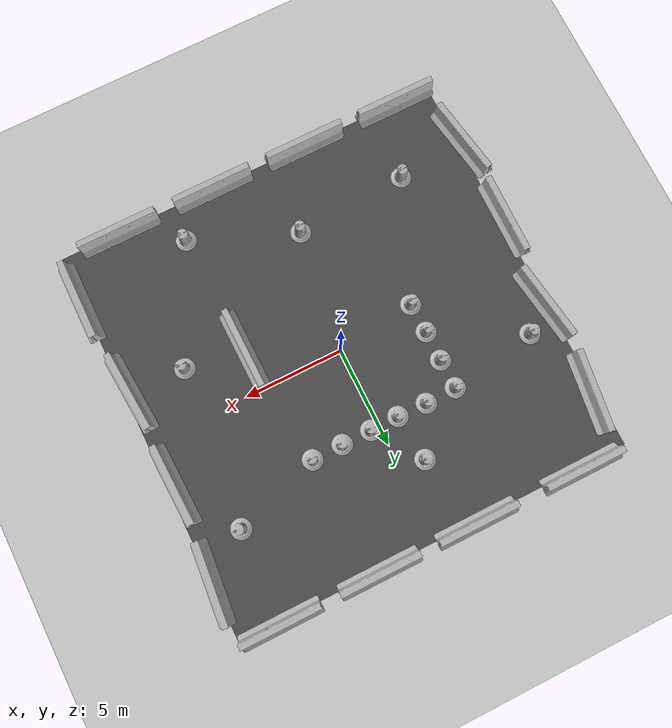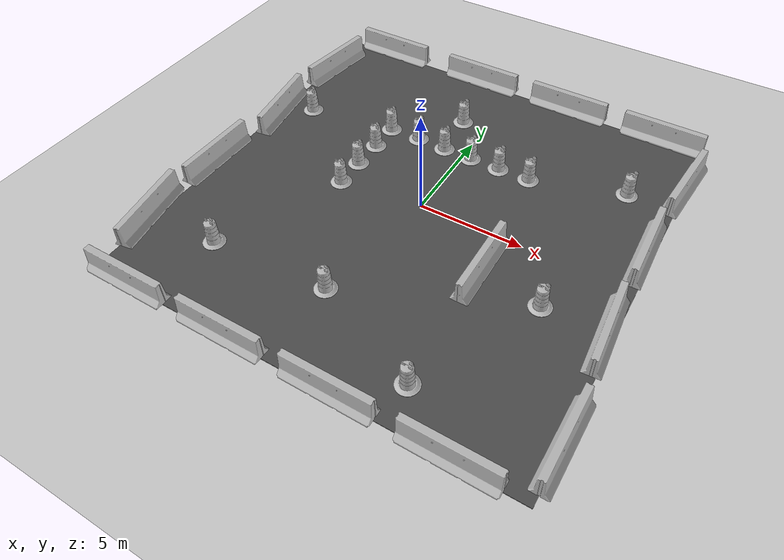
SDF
<sdf version="1.6">
 <world name="default">
  <light name="sun" type="directional">
   <pose>0 0 10 0 -0 0</pose>
   <diffuse>0.8 0.8 0.8 1</diffuse>
   <specular>0.2 0.2 0.2 1</specular>
   <attenuation>
    <range>1000</range>
    <constant>0.9</constant>
    <linear>0.01</linear>
    <quadratic>0.001</quadratic>
   </attenuation>
   <direction>-0.5 0.1 -0.9</direction>
  </light>
  <model name="ground_plane">
   <static>1</static>
   <link name="link">
    <collision name="collision">
     <geometry><plane><normal>0 0 1</normal><size>100 100</size></plane></geometry>
     <surface><friction><ode><mu>100</mu><mu2>50</mu2></ode></friction></surface>
    </collision>
    <visual name="visual">
     <cast_shadows>0</cast_shadows>
     <geometry><plane><normal>0 0 1</normal><size>100 100</size></plane></geometry>
     <material>
      <script><uri>file://media/materials/scripts/gazebo.material</uri><name>Gazebo/Grey</name></script>
     </material>
    </visual>
    <velocity_decay><linear>0</linear><angular>0</angular></velocity_decay>
   </link>
  </model>
  <physics name="default_physics" default="0" type="ode">
   <max_step_size>0.01</max_step_size>
   <real_time_factor>1</real_time_factor>
   <real_time_update_rate>100</real_time_update_rate>
  </physics>
  <scene><ambient>0.4 0.4 0.4 1</ambient><background>0.7 0.7 0.7 1</background><shadows>1</shadows></scene>
  <model name="jersey_barrier">
   <static>1</static>
   <link name="link">
    <visual name="visual">
     <geometry><mesh><uri>model://jersey_barrier/meshes/jersey_barrier.dae</uri></mesh></geometry>
    </visual>
    <collision name="upright">
     <pose>0 0 0.5715 0 -0 0</pose>
     <geometry><box><size>4.06542 0.3063 1.143</size></box></geometry>
    </collision>
    <collision name="base">
     <pose>0 0 0.032258 0 -0 0</pose>
     <geometry><box><size>4.06542 0.8107 0.064516</size></box></geometry>
    </collision>
    <collision name="base2">
     <pose>0 0 0.1 0 -0 0</pose>
     <geometry><box><size>4.06542 0.65 0.1</size></box></geometry>
    </collision>
    <collision name="base3">
     <pose>0 0 0.2 0 -0 0</pose>
     <geometry><box><size>4.06542 0.5 0.1</size></box></geometry>
    </collision>
    <collision name="left-angle">
     <pose>0 -0.224 0.2401 0.9 -0 0</pose>
     <geometry><box><size>4.06542 0.5 0.064516</size></box></geometry>
    </collision>
    <collision name="right-angle">
     <pose>0 0.224 0.2401 -0.9 0 0</pose>
     <geometry><box><size>4.06542 0.5 0.064516</size></box></geometry>
    </collision>
    <velocity_decay><linear>0</linear><angular>0</angular></velocity_decay>
   </link>
   <pose>-8 -10 0 0 -0 0</pose>
  </model>
  <model name="jersey_barrier_0">
   <static>1</static>
   <link name="link">
    <visual name="visual">
     <geometry><mesh><uri>model://jersey_barrier/meshes/jersey_barrier.dae</uri></mesh></geometry>
    </visual>
    <collision name="upright">
     <pose>0 0 0.5715 0 -0 0</pose>
     <geometry><box><size>4.06542 0.3063 1.143</size></box></geometry>
    </collision>
    <collision name="base">
     <pose>0 0 0.032258 0 -0 0</pose>
     <geometry><box><size>4.06542 0.8107 0.064516</size></box></geometry>
    </collision>
    <collision name="base2">
     <pose>0 0 0.1 0 -0 0</pose>
     <geometry><box><size>4.06542 0.65 0.1</size></box></geometry>
    </collision>
    <collision name="base3">
     <pose>0 0 0.2 0 -0 0</pose>
     <geometry><box><size>4.06542 0.5 0.1</size></box></geometry>
    </collision>
    <collision name="left-angle">
     <pose>0 -0.224 0.2401 0.9 -0 0</pose>
     <geometry><box><size>4.06542 0.5 0.064516</size></box></geometry>
    </collision>
    <collision name="right-angle">
     <pose>0 0.224 0.2401 -0.9 0 0</pose>
     <geometry><box><size>4.06542 0.5 0.064516</size></box></geometry>
    </collision>
    <velocity_decay><linear>0</linear><angular>0</angular></velocity_decay>
   </link>
   <pose>-3 -10 0 0 -0 0</pose>
  </model>
  <model name="jersey_barrier_1">
   <static>1</static>
   <link name="link">
    <visual name="visual">
     <geometry><mesh><uri>model://jersey_barrier/meshes/jersey_barrier.dae</uri></mesh></geometry>
    </visual>
    <collision name="upright">
     <pose>0 0 0.5715 0 -0 0</pose>
     <geometry><box><size>4.06542 0.3063 1.143</size></box></geometry>
    </collision>
    <collision name="base">
     <pose>0 0 0.032258 0 -0 0</pose>
     <geometry><box><size>4.06542 0.8107 0.064516</size></box></geometry>
    </collision>
    <collision name="base2">
     <pose>0 0 0.1 0 -0 0</pose>
     <geometry><box><size>4.06542 0.65 0.1</size></box></geometry>
    </collision>
    <collision name="base3">
     <pose>0 0 0.2 0 -0 0</pose>
     <geometry><box><size>4.06542 0.5 0.1</size></box></geometry>
    </collision>
    <collision name="left-angle">
     <pose>0 -0.224 0.2401 0.9 -0 0</pose>
     <geometry><box><size>4.06542 0.5 0.064516</size></box></geometry>
    </collision>
    <collision name="right-angle">
     <pose>0 0.224 0.2401 -0.9 0 0</pose>
     <geometry><box><size>4.06542 0.5 0.064516</size></box></geometry>
    </collision>
    <velocity_decay><linear>0</linear><angular>0</angular></velocity_decay>
   </link>
   <pose>2 -10 0 0 -0 0</pose>
  </model>
  <model name="jersey_barrier_2">
   <static>1</static>
   <link name="link">
    <visual name="visual">
     <geometry><mesh><uri>model://jersey_barrier/meshes/jersey_barrier.dae</uri></mesh></geometry>
    </visual>
    <collision name="upright">
     <pose>0 0 0.5715 0 -0 0</pose>
     <geometry><box><size>4.06542 0.3063 1.143</size></box></geometry>
    </collision>
    <collision name="base">
     <pose>0 0 0.032258 0 -0 0</pose>
     <geometry><box><size>4.06542 0.8107 0.064516</size></box></geometry>
    </collision>
    <collision name="base2">
     <pose>0 0 0.1 0 -0 0</pose>
     <geometry><box><size>4.06542 0.65 0.1</size></box></geometry>
    </collision>
    <collision name="base3">
     <pose>0 0 0.2 0 -0 0</pose>
     <geometry><box><size>4.06542 0.5 0.1</size></box></geometry>
    </collision>
    <collision name="left-angle">
     <pose>0 -0.224 0.2401 0.9 -0 0</pose>
     <geometry><box><size>4.06542 0.5 0.064516</size></box></geometry>
    </collision>
    <collision name="right-angle">
     <pose>0 0.224 0.2401 -0.9 0 0</pose>
     <geometry><box><size>4.06542 0.5 0.064516</size></box></geometry>
    </collision>
    <velocity_decay><linear>0</linear><angular>0</angular></velocity_decay>
   </link>
   <pose>7 -10 0 0 -0 0</pose>
  </model>
  <model name="jersey_barrier_3">
   <static>1</static>
   <link name="link">
    <visual name="visual">
     <geometry><mesh><uri>model://jersey_barrier/meshes/jersey_barrier.dae</uri></mesh></geometry>
    </visual>
    <collision name="upright">
     <pose>0 0 0.5715 0 -0 0</pose>
     <geometry><box><size>4.06542 0.3063 1.143</size></box></geometry>
    </collision>
    <collision name="base">
     <pose>0 0 0.032258 0 -0 0</pose>
     <geometry><box><size>4.06542 0.8107 0.064516</size></box></geometry>
    </collision>
    <collision name="base2">
     <pose>0 0 0.1 0 -0 0</pose>
     <geometry><box><size>4.06542 0.65 0.1</size></box></geometry>
    </collision>
    <collision name="base3">
     <pose>0 0 0.2 0 -0 0</pose>
     <geometry><box><size>4.06542 0.5 0.1</size></box></geometry>
    </collision>
    <collision name="left-angle">
     <pose>0 -0.224 0.2401 0.9 -0 0</pose>
     <geometry><box><size>4.06542 0.5 0.064516</size></box></geometry>
    </collision>
    <collision name="right-angle">
     <pose>0 0.224 0.2401 -0.9 0 0</pose>
     <geometry><box><size>4.06542 0.5 0.064516</size></box></geometry>
    </collision>
    <velocity_decay><linear>0</linear><angular>0</angular></velocity_decay>
   </link>
   <pose>-7.50675 10 0 0 -0 0</pose>
  </model>
  <model name="jersey_barrier_4">
   <static>1</static>
   <link name="link">
    <visual name="visual">
     <geometry><mesh><uri>model://jersey_barrier/meshes/jersey_barrier.dae</uri></mesh></geometry>
    </visual>
    <collision name="upright">
     <pose>0 0 0.5715 0 -0 0</pose>
     <geometry><box><size>4.06542 0.3063 1.143</size></box></geometry>
    </collision>
    <collision name="base">
     <pose>0 0 0.032258 0 -0 0</pose>
     <geometry><box><size>4.06542 0.8107 0.064516</size></box></geometry>
    </collision>
    <collision name="base2">
     <pose>0 0 0.1 0 -0 0</pose>
     <geometry><box><size>4.06542 0.65 0.1</size></box></geometry>
    </collision>
    <collision name="base3">
     <pose>0 0 0.2 0 -0 0</pose>
     <geometry><box><size>4.06542 0.5 0.1</size></box></geometry>
    </collision>
    <collision name="left-angle">
     <pose>0 -0.224 0.2401 0.9 -0 0</pose>
     <geometry><box><size>4.06542 0.5 0.064516</size></box></geometry>
    </collision>
    <collision name="right-angle">
     <pose>0 0.224 0.2401 -0.9 0 0</pose>
     <geometry><box><size>4.06542 0.5 0.064516</size></box></geometry>
    </collision>
    <velocity_decay><linear>0</linear><angular>0</angular></velocity_decay>
   </link>
   <pose>-2 10 0 0 -0 0</pose>
  </model>
  <model name="jersey_barrier_5">
   <static>1</static>
   <link name="link">
    <visual name="visual">
     <geometry><mesh><uri>model://jersey_barrier/meshes/jersey_barrier.dae</uri></mesh></geometry>
    </visual>
    <collision name="upright">
     <pose>0 0 0.5715 0 -0 0</pose>
     <geometry><box><size>4.06542 0.3063 1.143</size></box></geometry>
    </collision>
    <collision name="base">
     <pose>0 0 0.032258 0 -0 0</pose>
     <geometry><box><size>4.06542 0.8107 0.064516</size></box></geometry>
    </collision>
    <collision name="base2">
     <pose>0 0 0.1 0 -0 0</pose>
     <geometry><box><size>4.06542 0.65 0.1</size></box></geometry>
    </collision>
    <collision name="base3">
     <pose>0 0 0.2 0 -0 0</pose>
     <geometry><box><size>4.06542 0.5 0.1</size></box></geometry>
    </collision>
    <collision name="left-angle">
     <pose>0 -0.224 0.2401 0.9 -0 0</pose>
     <geometry><box><size>4.06542 0.5 0.064516</size></box></geometry>
    </collision>
    <collision name="right-angle">
     <pose>0 0.224 0.2401 -0.9 0 0</pose>
     <geometry><box><size>4.06542 0.5 0.064516</size></box></geometry>
    </collision>
    <velocity_decay><linear>0</linear><angular>0</angular></velocity_decay>
   </link>
   <pose>3 10 0 0 -0 0</pose>
  </model>
  <model name="jersey_barrier_6">
   <static>1</static>
   <link name="link">
    <visual name="visual">
     <geometry><mesh><uri>model://jersey_barrier/meshes/jersey_barrier.dae</uri></mesh></geometry>
    </visual>
    <collision name="upright">
     <pose>0 0 0.5715 0 -0 0</pose>
     <geometry><box><size>4.06542 0.3063 1.143</size></box></geometry>
    </collision>
    <collision name="base">
     <pose>0 0 0.032258 0 -0 0</pose>
     <geometry><box><size>4.06542 0.8107 0.064516</size></box></geometry>
    </collision>
    <collision name="base2">
     <pose>0 0 0.1 0 -0 0</pose>
     <geometry><box><size>4.06542 0.65 0.1</size></box></geometry>
    </collision>
    <collision name="base3">
     <pose>0 0 0.2 0 -0 0</pose>
     <geometry><box><size>4.06542 0.5 0.1</size></box></geometry>
    </collision>
    <collision name="left-angle">
     <pose>0 -0.224 0.2401 0.9 -0 0</pose>
     <geometry><box><size>4.06542 0.5 0.064516</size></box></geometry>
    </collision>
    <collision name="right-angle">
     <pose>0 0.224 0.2401 -0.9 0 0</pose>
     <geometry><box><size>4.06542 0.5 0.064516</size></box></geometry>
    </collision>
    <velocity_decay><linear>0</linear><angular>0</angular></velocity_decay>
   </link>
   <pose>8 10 0 0 -0 0</pose>
  </model>
  <model name="jersey_barrier_7">
   <static>1</static>
   <link name="link">
    <visual name="visual">
     <geometry><mesh><uri>model://jersey_barrier/meshes/jersey_barrier.dae</uri></mesh></geometry>
    </visual>
    <collision name="upright">
     <pose>0 0 0.5715 0 -0 0</pose>
     <geometry><box><size>4.06542 0.3063 1.143</size></box></geometry>
    </collision>
    <collision name="base">
     <pose>0 0 0.032258 0 -0 0</pose>
     <geometry><box><size>4.06542 0.8107 0.064516</size></box></geometry>
    </collision>
    <collision name="base2">
     <pose>0 0 0.1 0 -0 0</pose>
     <geometry><box><size>4.06542 0.65 0.1</size></box></geometry>
    </collision>
    <collision name="base3">
     <pose>0 0 0.2 0 -0 0</pose>
     <geometry><box><size>4.06542 0.5 0.1</size></box></geometry>
    </collision>
    <collision name="left-angle">
     <pose>0 -0.224 0.2401 0.9 -0 0</pose>
     <geometry><box><size>4.06542 0.5 0.064516</size></box></geometry>
    </collision>
    <collision name="right-angle">
     <pose>0 0.224 0.2401 -0.9 0 0</pose>
     <geometry><box><size>4.06542 0.5 0.064516</size></box></geometry>
    </collision>
    <velocity_decay><linear>0</linear><angular>0</angular></velocity_decay>
   </link>
   <pose>9.74902 -2.57759 0 0 -0 1.64</pose>
  </model>
  <model name="jersey_barrier_8">
   <static>1</static>
   <link name="link">
    <visual name="visual">
     <geometry><mesh><uri>model://jersey_barrier/meshes/jersey_barrier.dae</uri></mesh></geometry>
    </visual>
    <collision name="upright">
     <pose>0 0 0.5715 0 -0 0</pose>
     <geometry><box><size>4.06542 0.3063 1.143</size></box></geometry>
    </collision>
    <collision name="base">
     <pose>0 0 0.032258 0 -0 0</pose>
     <geometry><box><size>4.06542 0.8107 0.064516</size></box></geometry>
    </collision>
    <collision name="base2">
     <pose>0 0 0.1 0 -0 0</pose>
     <geometry><box><size>4.06542 0.65 0.1</size></box></geometry>
    </collision>
    <collision name="base3">
     <pose>0 0 0.2 0 -0 0</pose>
     <geometry><box><size>4.06542 0.5 0.1</size></box></geometry>
    </collision>
    <collision name="left-angle">
     <pose>0 -0.224 0.2401 0.9 -0 0</pose>
     <geometry><box><size>4.06542 0.5 0.064516</size></box></geometry>
    </collision>
    <collision name="right-angle">
     <pose>0 0.224 0.2401 -0.9 0 0</pose>
     <geometry><box><size>4.06542 0.5 0.064516</size></box></geometry>
    </collision>
    <velocity_decay><linear>0</linear><angular>0</angular></velocity_decay>
   </link>
   <pose>9.70141 2.24369 0 0 -0 1.6</pose>
  </model>
  <model name="jersey_barrier_9">
   <static>1</static>
   <link name="link">
    <visual name="visual">
     <geometry><mesh><uri>model://jersey_barrier/meshes/jersey_barrier.dae</uri></mesh></geometry>
    </visual>
    <collision name="upright">
     <pose>0 0 0.5715 0 -0 0</pose>
     <geometry><box><size>4.06542 0.3063 1.143</size></box></geometry>
    </collision>
    <collision name="base">
     <pose>0 0 0.032258 0 -0 0</pose>
     <geometry><box><size>4.06542 0.8107 0.064516</size></box></geometry>
    </collision>
    <collision name="base2">
     <pose>0 0 0.1 0 -0 0</pose>
     <geometry><box><size>4.06542 0.65 0.1</size></box></geometry>
    </collision>
    <collision name="base3">
     <pose>0 0 0.2 0 -0 0</pose>
     <geometry><box><size>4.06542 0.5 0.1</size></box></geometry>
    </collision>
    <collision name="left-angle">
     <pose>0 -0.224 0.2401 0.9 -0 0</pose>
     <geometry><box><size>4.06542 0.5 0.064516</size></box></geometry>
    </collision>
    <collision name="right-angle">
     <pose>0 0.224 0.2401 -0.9 0 0</pose>
     <geometry><box><size>4.06542 0.5 0.064516</size></box></geometry>
    </collision>
    <velocity_decay><linear>0</linear><angular>0</angular></velocity_decay>
   </link>
   <pose>-10.0607 -6.69856 0 0 0 -1.4</pose>
  </model>
  <model name="jersey_barrier_10">
   <static>1</static>
   <link name="link">
    <visual name="visual">
     <geometry><mesh><uri>model://jersey_barrier/meshes/jersey_barrier.dae</uri></mesh></geometry>
    </visual>
    <collision name="upright">
     <pose>0 0 0.5715 0 -0 0</pose>
     <geometry><box><size>4.06542 0.3063 1.143</size></box></geometry>
    </collision>
    <collision name="base">
     <pose>0 0 0.032258 0 -0 0</pose>
     <geometry><box><size>4.06542 0.8107 0.064516</size></box></geometry>
    </collision>
    <collision name="base2">
     <pose>0 0 0.1 0 -0 0</pose>
     <geometry><box><size>4.06542 0.65 0.1</size></box></geometry>
    </collision>
    <collision name="base3">
     <pose>0 0 0.2 0 -0 0</pose>
     <geometry><box><size>4.06542 0.5 0.1</size></box></geometry>
    </collision>
    <collision name="left-angle">
     <pose>0 -0.224 0.2401 0.9 -0 0</pose>
     <geometry><box><size>4.06542 0.5 0.064516</size></box></geometry>
    </collision>
    <collision name="right-angle">
     <pose>0 0.224 0.2401 -0.9 0 0</pose>
     <geometry><box><size>4.06542 0.5 0.064516</size></box></geometry>
    </collision>
    <velocity_decay><linear>0</linear><angular>0</angular></velocity_decay>
   </link>
   <pose>-10.0774 -2.27159 0 0 -0 1.56</pose>
  </model>
  <model name="jersey_barrier_11">
   <static>1</static>
   <link name="link">
    <visual name="visual">
     <geometry><mesh><uri>model://jersey_barrier/meshes/jersey_barrier.dae</uri></mesh></geometry>
    </visual>
    <collision name="upright">
     <pose>0 0 0.5715 0 -0 0</pose>
     <geometry><box><size>4.06542 0.3063 1.143</size></box></geometry>
    </collision>
    <collision name="base">
     <pose>0 0 0.032258 0 -0 0</pose>
     <geometry><box><size>4.06542 0.8107 0.064516</size></box></geometry>
    </collision>
    <collision name="base2">
     <pose>0 0 0.1 0 -0 0</pose>
     <geometry><box><size>4.06542 0.65 0.1</size></box></geometry>
    </collision>
    <collision name="base3">
     <pose>0 0 0.2 0 -0 0</pose>
     <geometry><box><size>4.06542 0.5 0.1</size></box></geometry>
    </collision>
    <collision name="left-angle">
     <pose>0 -0.224 0.2401 0.9 -0 0</pose>
     <geometry><box><size>4.06542 0.5 0.064516</size></box></geometry>
    </collision>
    <collision name="right-angle">
     <pose>0 0.224 0.2401 -0.9 0 0</pose>
     <geometry><box><size>4.06542 0.5 0.064516</size></box></geometry>
    </collision>
    <velocity_decay><linear>0</linear><angular>0</angular></velocity_decay>
   </link>
   <pose>-9.77013 2.34791 0 0 -0 1.72</pose>
  </model>
  <model name="jersey_barrier_12">
   <static>1</static>
   <link name="link">
    <visual name="visual">
     <geometry><mesh><uri>model://jersey_barrier/meshes/jersey_barrier.dae</uri></mesh></geometry>
    </visual>
    <collision name="upright">
     <pose>0 0 0.5715 0 -0 0</pose>
     <geometry><box><size>4.06542 0.3063 1.143</size></box></geometry>
    </collision>
    <collision name="base">
     <pose>0 0 0.032258 0 -0 0</pose>
     <geometry><box><size>4.06542 0.8107 0.064516</size></box></geometry>
    </collision>
    <collision name="base2">
     <pose>0 0 0.1 0 -0 0</pose>
     <geometry><box><size>4.06542 0.65 0.1</size></box></geometry>
    </collision>
    <collision name="base3">
     <pose>0 0 0.2 0 -0 0</pose>
     <geometry><box><size>4.06542 0.5 0.1</size></box></geometry>
    </collision>
    <collision name="left-angle">
     <pose>0 -0.224 0.2401 0.9 -0 0</pose>
     <geometry><box><size>4.06542 0.5 0.064516</size></box></geometry>
    </collision>
    <collision name="right-angle">
     <pose>0 0.224 0.2401 -0.9 0 0</pose>
     <geometry><box><size>4.06542 0.5 0.064516</size></box></geometry>
    </collision>
    <velocity_decay><linear>0</linear><angular>0</angular></velocity_decay>
   </link>
   <pose>10.0879 -7.62159 0 0 -0 1.56</pose>
  </model>
  <model name="jersey_barrier_13">
   <static>1</static>
   <link name="link">
    <visual name="visual">
     <geometry><mesh><uri>model://jersey_barrier/meshes/jersey_barrier.dae</uri></mesh></geometry>
    </visual>
    <collision name="upright">
     <pose>0 0 0.5715 0 -0 0</pose>
     <geometry><box><size>4.06542 0.3063 1.143</size></box></geometry>
    </collision>
    <collision name="base">
     <pose>0 0 0.032258 0 -0 0</pose>
     <geometry><box><size>4.06542 0.8107 0.064516</size></box></geometry>
    </collision>
    <collision name="base2">
     <pose>0 0 0.1 0 -0 0</pose>
     <geometry><box><size>4.06542 0.65 0.1</size></box></geometry>
    </collision>
    <collision name="base3">
     <pose>0 0 0.2 0 -0 0</pose>
     <geometry><box><size>4.06542 0.5 0.1</size></box></geometry>
    </collision>
    <collision name="left-angle">
     <pose>0 -0.224 0.2401 0.9 -0 0</pose>
     <geometry><box><size>4.06542 0.5 0.064516</size></box></geometry>
    </collision>
    <collision name="right-angle">
     <pose>0 0.224 0.2401 -0.9 0 0</pose>
     <geometry><box><size>4.06542 0.5 0.064516</size></box></geometry>
    </collision>
    <velocity_decay><linear>0</linear><angular>0</angular></velocity_decay>
   </link>
   <pose>10 7 0 0 -0 1.48</pose>
  </model>
  <model name="jersey_barrier_14">
   <static>1</static>
   <link name="link">
    <visual name="visual">
     <geometry><mesh><uri>model://jersey_barrier/meshes/jersey_barrier.dae</uri></mesh></geometry>
    </visual>
    <collision name="upright">
     <pose>0 0 0.5715 0 -0 0</pose>
     <geometry><box><size>4.06542 0.3063 1.143</size></box></geometry>
    </collision>
    <collision name="base">
     <pose>0 0 0.032258 0 -0 0</pose>
     <geometry><box><size>4.06542 0.8107 0.064516</size></box></geometry>
    </collision>
    <collision name="base2">
     <pose>0 0 0.1 0 -0 0</pose>
     <geometry><box><size>4.06542 0.65 0.1</size></box></geometry>
    </collision>
    <collision name="base3">
     <pose>0 0 0.2 0 -0 0</pose>
     <geometry><box><size>4.06542 0.5 0.1</size></box></geometry>
    </collision>
    <collision name="left-angle">
     <pose>0 -0.224 0.2401 0.9 -0 0</pose>
     <geometry><box><size>4.06542 0.5 0.064516</size></box></geometry>
    </collision>
    <collision name="right-angle">
     <pose>0 0.224 0.2401 -0.9 0 0</pose>
     <geometry><box><size>4.06542 0.5 0.064516</size></box></geometry>
    </collision>
    <velocity_decay><linear>0</linear><angular>0</angular></velocity_decay>
   </link>
   <pose>-9.64482 7.05946 0 0 -0 1.44</pose>
  </model>
  <model name="jersey_barrier_15">
   <static>1</static>
   <link name="link">
    <visual name="visual">
     <geometry><mesh><uri>model://jersey_barrier/meshes/jersey_barrier.dae</uri></mesh></geometry>
    </visual>
    <collision name="upright">
     <pose>0 0 0.5715 0 -0 0</pose>
     <geometry><box><size>4.06542 0.3063 1.143</size></box></geometry>
    </collision>
    <collision name="base">
     <pose>0 0 0.032258 0 -0 0</pose>
     <geometry><box><size>4.06542 0.8107 0.064516</size></box></geometry>
    </collision>
    <collision name="base2">
     <pose>0 0 0.1 0 -0 0</pose>
     <geometry><box><size>4.06542 0.65 0.1</size></box></geometry>
    </collision>
    <collision name="base3">
     <pose>0 0 0.2 0 -0 0</pose>
     <geometry><box><size>4.06542 0.5 0.1</size></box></geometry>
    </collision>
    <collision name="left-angle">
     <pose>0 -0.224 0.2401 0.9 -0 0</pose>
     <geometry><box><size>4.06542 0.5 0.064516</size></box></geometry>
    </collision>
    <collision name="right-angle">
     <pose>0 0.224 0.2401 -0.9 0 0</pose>
     <geometry><box><size>4.06542 0.5 0.064516</size></box></geometry>
    </collision>
    <velocity_decay><linear>0</linear><angular>0</angular></velocity_decay>
   </link>
   <pose>4.07652 -2.02821 0 0 -0 1.5788</pose>
  </model>
  <model name="Construction Barrel">
   <link name="link">
    <inertial>
     <pose>0 0 0.4 0 -0 0</pose>
     <mass>500</mass>
     <inertia><ixx>51.2096</ixx><iyy>51.2096</iyy><izz>25</izz><ixy>0</ixy><ixz>0</ixz><iyz>0</iyz></inertia>
    </inertial>
    <collision name="collision">
     <geometry><mesh><uri>model://construction_barrel/meshes/construction_barrel.dae</uri></mesh></geometry>
    </collision>
    <visual name="visual">
     <geometry><mesh><uri>model://construction_barrel/meshes/construction_barrel.dae</uri></mesh></geometry>
    </visual>
    <velocity_decay><linear>0</linear><angular>0</angular></velocity_decay>
   </link>
   <pose>6.99991 -2.54668 0.0022 1e-06 -0.000441 -0.000497</pose>
   <static>0</static>
  </model>
  <model name="asphalt_plane">
   <static>1</static>
   <link name="link">
    <collision name="collision">
     <geometry><box><size>20 20 0.1</size></box></geometry>
     <max_contacts>100</max_contacts>
    </collision>
    <visual name="visual">
     <cast_shadows>0</cast_shadows>
     <geometry><box><size>20 20 0.1</size></box></geometry>
     <material>
      <script>
       <uri>model://asphalt_plane/materials/scripts</uri>
       <uri>model://asphalt_plane/materials/textures</uri>
       <name>vrc/asphalt</name>
      </script>
     </material>
    </visual>
    <velocity_decay><linear>0</linear><angular>0</angular></velocity_decay>
   </link>
   <pose>0.076265 -0.085216 -0.047688 0 -0 0</pose>
  </model>
  <model name="Construction Barrel_2">
   <link name="link">
    <inertial>
     <pose>0 0 0.4 0 -0 0</pose>
     <mass>500</mass>
     <inertia><ixx>51.2096</ixx><iyy>51.2096</iyy><izz>25</izz><ixy>0</ixy><ixz>0</ixz><iyz>0</iyz></inertia>
    </inertial>
    <collision name="collision">
     <geometry><mesh><uri>model://construction_barrel/meshes/construction_barrel.dae</uri></mesh></geometry>
    </collision>
    <visual name="visual">
     <geometry><mesh><uri>model://construction_barrel/meshes/construction_barrel.dae</uri></mesh></geometry>
    </visual>
    <velocity_decay><linear>0</linear><angular>0</angular></velocity_decay>
   </link>
   <pose>-4.08512 1.00443 0.002242 -0.000138 -0.000303 0.064086</pose>
   <static>0</static>
  </model>
  <model name="Construction Barrel_3">
   <link name="link">
    <inertial>
     <pose>0 0 0.4 0 -0 0</pose>
     <mass>500</mass>
     <inertia><ixx>51.2096</ixx><iyy>51.2096</iyy><izz>25</izz><ixy>0</ixy><ixz>0</ixz><iyz>0</iyz></inertia>
    </inertial>
    <collision name="collision">
     <geometry><mesh><uri>model://construction_barrel/meshes/construction_barrel.dae</uri></mesh></geometry>
    </collision>
    <visual name="visual">
     <geometry><mesh><uri>model://construction_barrel/meshes/construction_barrel.dae</uri></mesh></geometry>
    </visual>
    <velocity_decay><linear>0</linear><angular>0</angular></velocity_decay>
   </link>
   <pose>-4.06721 2.52112 0.002171 -0.000151 -0.000509 -0.12238</pose>
   <static>0</static>
  </model>
  <model name="Construction Barrel_4">
   <link name="link">
    <inertial>
     <pose>0 0 0.4 0 -0 0</pose>
     <mass>500</mass>
     <inertia><ixx>51.2096</ixx><iyy>51.2096</iyy><izz>25</izz><ixy>0</ixy><ixz>0</ixz><iyz>0</iyz></inertia>
    </inertial>
    <collision name="collision">
     <geometry><mesh><uri>model://construction_barrel/meshes/construction_barrel.dae</uri></mesh></geometry>
    </collision>
    <visual name="visual">
     <geometry><mesh><uri>model://construction_barrel/meshes/construction_barrel.dae</uri></mesh></geometry>
    </visual>
    <velocity_decay><linear>0</linear><angular>0</angular></velocity_decay>
   </link>
   <pose>-4.07931 4.00659 0.0022 1e-06 -0.000441 -0.050836</pose>
   <static>0</static>
  </model>
  <model name="Construction Barrel_6">
   <link name="link">
    <inertial>
     <pose>0 0 0.4 0 -0 0</pose>
     <mass>500</mass>
     <inertia><ixx>51.2096</ixx><iyy>51.2096</iyy><izz>25</izz><ixy>0</ixy><ixz>0</ixz><iyz>0</iyz></inertia>
    </inertial>
    <collision name="collision">
     <geometry><mesh><uri>model://construction_barrel/meshes/construction_barrel.dae</uri></mesh></geometry>
    </collision>
    <visual name="visual">
     <geometry><mesh><uri>model://construction_barrel/meshes/construction_barrel.dae</uri></mesh></geometry>
    </visual>
    <velocity_decay><linear>0</linear><angular>0</angular></velocity_decay>
   </link>
   <pose>-2.5093 4.04432 0.0022 1e-06 -0.000441 0.025725</pose>
   <static>0</static>
  </model>
  <model name="Construction Barrel_7">
   <link name="link">
    <inertial>
     <pose>0 0 0.4 0 -0 0</pose>
     <mass>500</mass>
     <inertia><ixx>51.2096</ixx><iyy>51.2096</iyy><izz>25</izz><ixy>0</ixy><ixz>0</ixz><iyz>0</iyz></inertia>
    </inertial>
    <collision name="collision">
     <geometry><mesh><uri>model://construction_barrel/meshes/construction_barrel.dae</uri></mesh></geometry>
    </collision>
    <visual name="visual">
     <geometry><mesh><uri>model://construction_barrel/meshes/construction_barrel.dae</uri></mesh></geometry>
    </visual>
    <velocity_decay><linear>0</linear><angular>0</angular></velocity_decay>
   </link>
   <pose>-1.02527 4.00557 0.0022 1e-06 -0.000441 0.009344</pose>
   <static>0</static>
  </model>
  <gravity>0 0 -9.8</gravity>
  <magnetic_field>6e-06 2.3e-05 -4.2e-05</magnetic_field>
  <atmosphere type="adiabatic"/>
  <spherical_coordinates>
   <surface_model>EARTH_WGS84</surface_model>
   <latitude_deg>0</latitude_deg>
   <longitude_deg>0</longitude_deg>
   <elevation>0</elevation>
   <heading_deg>0</heading_deg>
  </spherical_coordinates>
  <model name="Construction Barrel_7_clone">
   <link name="link">
    <inertial>
     <pose>0 0 0.4 0 -0 0</pose>
     <mass>500</mass>
     <inertia><ixx>51.2096</ixx><iyy>51.2096</iyy><izz>25</izz><ixy>0</ixy><ixz>0</ixz><iyz>0</iyz></inertia>
    </inertial>
    <collision name="collision">
     <geometry><mesh><uri>model://construction_barrel/meshes/construction_barrel.dae</uri></mesh></geometry>
    </collision>
    <visual name="visual">
     <geometry><mesh><uri>model://construction_barrel/meshes/construction_barrel.dae</uri></mesh></geometry>
    </visual>
    <velocity_decay><linear>0</linear><angular>0</angular></velocity_decay>
   </link>
   <pose>0.419386 4.01931 0.0022 1e-06 -0.000441 0.00935</pose>
   <static>0</static>
  </model>
  <model name="Construction Barrel_7_clone_0">
   <link name="link">
    <inertial>
     <pose>0 0 0.4 0 -0 0</pose>
     <mass>500</mass>
     <inertia><ixx>51.2096</ixx><iyy>51.2096</iyy><izz>25</izz><ixy>0</ixy><ixz>0</ixz><iyz>0</iyz></inertia>
    </inertial>
    <collision name="collision">
     <geometry><mesh><uri>model://construction_barrel/meshes/construction_barrel.dae</uri></mesh></geometry>
    </collision>
    <visual name="visual">
     <geometry><mesh><uri>model://construction_barrel/meshes/construction_barrel.dae</uri></mesh></geometry>
    </visual>
    <velocity_decay><linear>0</linear><angular>0</angular></velocity_decay>
   </link>
   <pose>1.91484 4.01354 0.0022 1e-06 -0.000441 0.009367</pose>
   <static>0</static>
  </model>
  <model name="Construction Barrel_7_clone_1">
   <link name="link">
    <inertial>
     <pose>0 0 0.4 0 -0 0</pose>
     <mass>500</mass>
     <inertia><ixx>51.2096</ixx><iyy>51.2096</iyy><izz>25</izz><ixy>0</ixy><ixz>0</ixz><iyz>0</iyz></inertia>
    </inertial>
    <collision name="collision">
     <geometry><mesh><uri>model://construction_barrel/meshes/construction_barrel.dae</uri></mesh></geometry>
    </collision>
    <visual name="visual">
     <geometry><mesh><uri>model://construction_barrel/meshes/construction_barrel.dae</uri></mesh></geometry>
    </visual>
    <velocity_decay><linear>0</linear><angular>0</angular></velocity_decay>
   </link>
   <pose>3.47187 4.0308 0.002238 -0.000146 -0.000314 0.009282</pose>
   <static>0</static>
  </model>
  <model name="Construction Barrel_7_clone_2">
   <link name="link">
    <inertial>
     <pose>0 0 0.4 0 -0 0</pose>
     <mass>500</mass>
     <inertia><ixx>51.2096</ixx><iyy>51.2096</iyy><izz>25</izz><ixy>0</ixy><ixz>0</ixz><iyz>0</iyz></inertia>
    </inertial>
    <collision name="collision">
     <geometry><mesh><uri>model://construction_barrel/meshes/construction_barrel.dae</uri></mesh></geometry>
    </collision>
    <visual name="visual">
     <geometry><mesh><uri>model://construction_barrel/meshes/construction_barrel.dae</uri></mesh></geometry>
    </visual>
    <velocity_decay><linear>0</linear><angular>0</angular></velocity_decay>
   </link>
   <pose>-4.03924 -0.516961 0.002238 -0.000146 -0.000314 0.0093</pose>
   <static>0</static>
  </model>
  <model name="Construction Barrel_clone">
   <link name="link">
    <inertial>
     <pose>0 0 0.4 0 -0 0</pose>
     <mass>500</mass>
     <inertia><ixx>51.2096</ixx><iyy>51.2096</iyy><izz>25</izz><ixy>0</ixy><ixz>0</ixz><iyz>0</iyz></inertia>
    </inertial>
    <collision name="collision">
     <geometry><mesh><uri>model://construction_barrel/meshes/construction_barrel.dae</uri></mesh></geometry>
    </collision>
    <visual name="visual">
     <geometry><mesh><uri>model://construction_barrel/meshes/construction_barrel.dae</uri></mesh></geometry>
    </visual>
    <velocity_decay><linear>0</linear><angular>0</angular></velocity_decay>
   </link>
   <pose>-6.5688 -6.44639 0.0022 1e-06 -0.000441 -0.000494</pose>
   <static>0</static>
  </model>
  <model name="Construction Barrel_clone_0">
   <link name="link">
    <inertial>
     <pose>0 0 0.4 0 -0 0</pose>
     <mass>500</mass>
     <inertia><ixx>51.2096</ixx><iyy>51.2096</iyy><izz>25</izz><ixy>0</ixy><ixz>0</ixz><iyz>0</iyz></inertia>
    </inertial>
    <collision name="collision">
     <geometry><mesh><uri>model://construction_barrel/meshes/construction_barrel.dae</uri></mesh></geometry>
    </collision>
    <visual name="visual">
     <geometry><mesh><uri>model://construction_barrel/meshes/construction_barrel.dae</uri></mesh></geometry>
    </visual>
    <velocity_decay><linear>0</linear><angular>0</angular></velocity_decay>
   </link>
   <pose>4.28813 -8.24133 0.002237 -0.000148 -0.000317 -0.00059</pose>
   <static>0</static>
  </model>
  <model name="Construction Barrel_clone_1">
   <link name="link">
    <inertial>
     <pose>0 0 0.4 0 -0 0</pose>
     <mass>500</mass>
     <inertia><ixx>51.2096</ixx><iyy>51.2096</iyy><izz>25</izz><ixy>0</ixy><ixz>0</ixz><iyz>0</iyz></inertia>
    </inertial>
    <collision name="collision">
     <geometry><mesh><uri>model://construction_barrel/meshes/construction_barrel.dae</uri></mesh></geometry>
    </collision>
    <visual name="visual">
     <geometry><mesh><uri>model://construction_barrel/meshes/construction_barrel.dae</uri></mesh></geometry>
    </visual>
    <velocity_decay><linear>0</linear><angular>0</angular></velocity_decay>
   </link>
   <pose>7.81525 5.399 0.002237 -0.000148 -0.000317 -0.000575</pose>
   <static>0</static>
  </model>
  <model name="Construction Barrel_clone_2">
   <link name="link">
    <inertial>
     <pose>0 0 0.4 0 -0 0</pose>
     <mass>500</mass>
     <inertia><ixx>51.2096</ixx><iyy>51.2096</iyy><izz>25</izz><ixy>0</ixy><ixz>0</ixz><iyz>0</iyz></inertia>
    </inertial>
    <collision name="collision">
     <geometry><mesh><uri>model://construction_barrel/meshes/construction_barrel.dae</uri></mesh></geometry>
    </collision>
    <visual name="visual">
     <geometry><mesh><uri>model://construction_barrel/meshes/construction_barrel.dae</uri></mesh></geometry>
    </visual>
    <velocity_decay><linear>0</linear><angular>0</angular></velocity_decay>
   </link>
   <pose>-8.48976 3.30667 0.002237 -0.000148 -0.000317 -0.000513</pose>
   <static>0</static>
  </model>
  <model name="Construction Barrel_clone_3">
   <link name="link">
    <inertial>
     <pose>0 0 0.4 0 -0 0</pose>
     <mass>500</mass>
     <inertia><ixx>51.2096</ixx><iyy>51.2096</iyy><izz>25</izz><ixy>0</ixy><ixz>0</ixz><iyz>0</iyz></inertia>
    </inertial>
    <collision name="collision">
     <geometry><mesh><uri>model://construction_barrel/meshes/construction_barrel.dae</uri></mesh></geometry>
    </collision>
    <visual name="visual">
     <geometry><mesh><uri>model://construction_barrel/meshes/construction_barrel.dae</uri></mesh></geometry>
    </visual>
    <velocity_decay><linear>0</linear><angular>0</angular></velocity_decay>
   </link>
   <pose>-1.23721 6.36604 0.0022 1e-06 -0.000441 -0.000483</pose>
   <static>0</static>
  </model>
  <model name="Construction Barrel_clone_4">
   <link name="link">
    <inertial>
     <pose>0 0 0.4 0 -0 0</pose>
     <mass>500</mass>
     <inertia><ixx>51.2096</ixx><iyy>51.2096</iyy><izz>25</izz><ixy>0</ixy><ixz>0</ixz><iyz>0</iyz></inertia>
    </inertial>
    <collision name="collision">
     <geometry><mesh><uri>model://construction_barrel/meshes/construction_barrel.dae</uri></mesh></geometry>
    </collision>
    <visual name="visual">
     <geometry><mesh><uri>model://construction_barrel/meshes/construction_barrel.dae</uri></mesh></geometry>
    </visual>
    <velocity_decay><linear>0</linear><angular>0</angular></velocity_decay>
   </link>
   <pose>-0.893538 -6.11894 0.0022 1e-06 -0.000441 -0.000483</pose>
   <static>0</static>
  </model>
 </world>
</sdf>
